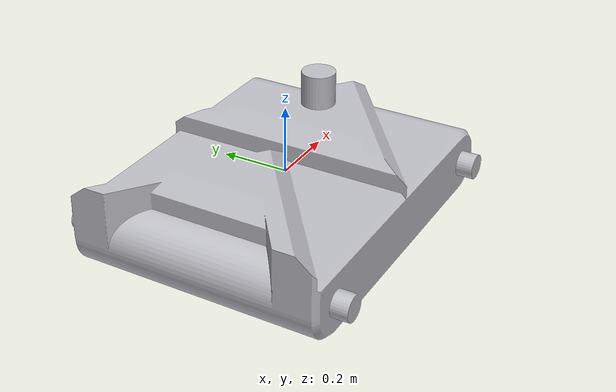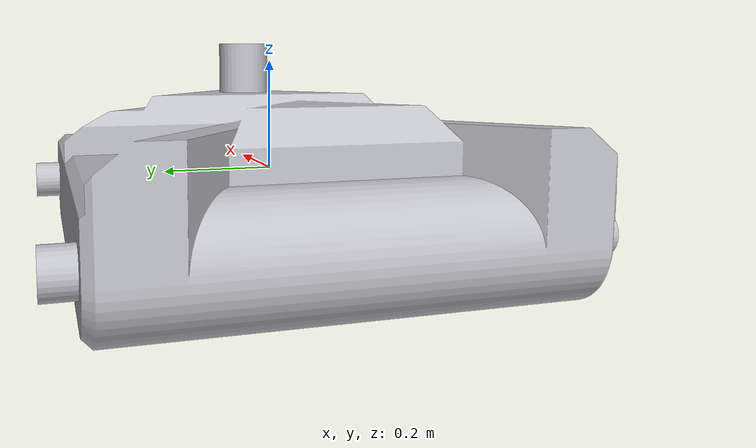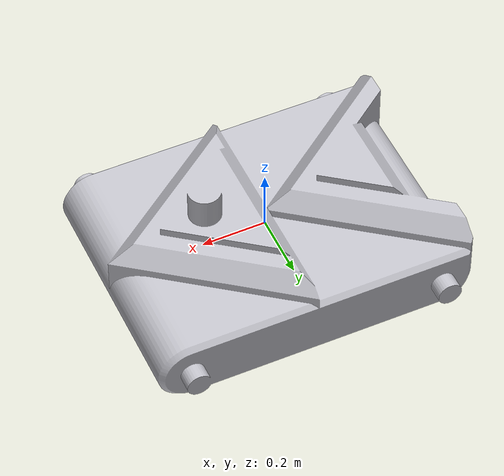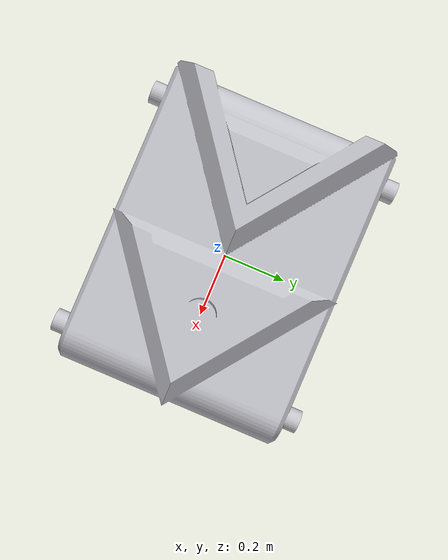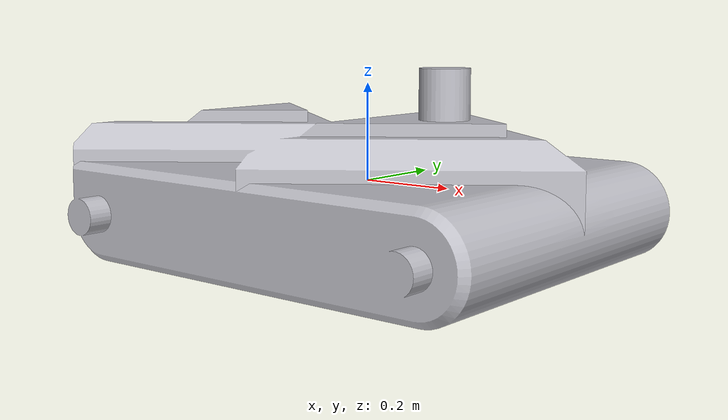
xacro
<?xml version="1.0" ?>
<robot name="amr" xmlns:xacro="http://www.ros.org/wiki/xacro">

<xacro:include filename="$(find amr_description)/urdf/materials.xacro" />
<xacro:include filename="$(find amr_description)/urdf/amr.trans" />
<xacro:include filename="$(find amr_description)/urdf/amr.gazebo" />
<link name="base_link">
  <inertial>
    <origin xyz="0.0 8.902012997990435e-05 0.0005969174994691003" rpy="0 0 0"/>
    <mass value="1.202294246159139"/>
    <inertia ixx="0.001027" iyy="0.000603" izz="0.001535" ixy="0.0" iyz="-1e-06" ixz="0.0"/>
  </inertial>
  <visual>
    <origin xyz="0 0 0" rpy="0 0 0"/>
    <geometry>
      <mesh filename="package://amr_description/meshes/base_link.stl" scale="0.001 0.001 0.001"/>
    </geometry>
    <material name="silver"/>
  </visual>
  <collision>
    <origin xyz="0 0 0" rpy="0 0 0"/>
    <geometry>
      <mesh filename="package://amr_description/meshes/base_link.stl" scale="0.001 0.001 0.001"/>
    </geometry>
  </collision>
</link>

<link name="f_wheel_link_1">
  <inertial>
    <origin xyz="-3.313617118894079e-17 -3.319497454690179e-13 3.469446951953614e-20" rpy="0 0 0"/>
    <mass value="0.20199414508982372"/>
    <inertia ixx="3.7e-05" iyy="0.000378" izz="0.000378" ixy="-0.0" iyz="-0.0" ixz="0.0"/>
  </inertial>
  <visual>
    <origin xyz="-0.0 0.0375 -0.0" rpy="0 0 0"/>
    <geometry>
      <mesh filename="package://amr_description/meshes/f_wheel_link_1.stl" scale="0.001 0.001 0.001"/>
    </geometry>
    <material name="silver"/>
  </visual>
  <collision>
    <origin xyz="-0.0 0.0375 -0.0" rpy="0 0 0"/>
    <geometry>
      <mesh filename="package://amr_description/meshes/f_wheel_link_1.stl" scale="0.001 0.001 0.001"/>
    </geometry>
  </collision>
</link>

<link name="b_wheel_link_1">
  <inertial>
    <origin xyz="2.2090780792627208e-17 3.319566843629218e-13 0.0" rpy="0 0 0"/>
    <mass value="0.20199414508982363"/>
    <inertia ixx="3.7e-05" iyy="0.000378" izz="0.000378" ixy="-0.0" iyz="0.0" ixz="0.0"/>
  </inertial>
  <visual>
    <origin xyz="-0.0 -0.0375 -0.0" rpy="0 0 0"/>
    <geometry>
      <mesh filename="package://amr_description/meshes/b_wheel_link_1.stl" scale="0.001 0.001 0.001"/>
    </geometry>
    <material name="silver"/>
  </visual>
  <collision>
    <origin xyz="-0.0 -0.0375 -0.0" rpy="0 0 0"/>
    <geometry>
      <mesh filename="package://amr_description/meshes/b_wheel_link_1.stl" scale="0.001 0.001 0.001"/>
    </geometry>
  </collision>
</link>

<joint name="f_wheel_joint" type="continuous">
  <origin xyz="0.0 -0.0375 0.0" rpy="0 0 0"/>
  <parent link="base_link"/>
  <child link="f_wheel_link_1"/>
  <axis xyz="1.0 0.0 0.0"/>
</joint>

<joint name="b_wheel_joint" type="continuous">
  <origin xyz="0.0 0.0375 0.0" rpy="0 0 0"/>
  <parent link="base_link"/>
  <child link="b_wheel_link_1"/>
  <axis xyz="1.0 0.0 0.0"/>
</joint>

</robot>

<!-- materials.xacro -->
<robot xmlns:xacro="http://www.ros.org/wiki/xacro">

    <!-- ================= COLORS ================= -->

    <material name="black">
        <color rgba="0.05 0.05 0.05 1"/>
    </material>

    <material name="dark_grey">
        <color rgba="0.2 0.2 0.2 1"/>
    </material>

    <material name="grey">
        <color rgba="0.5 0.5 0.5 1"/>
    </material>

    <material name="orange">
        <color rgba="0.85 0.55 0.1 1"/>
    </material>

    <material name="blue">
        <color rgba="0.1 0.3 0.8 1"/>
    </material>

    <material name="white">
        <color rgba="1 1 1 1"/>
    </material>

</robot>

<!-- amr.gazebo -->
<robot name="amr" xmlns:xacro="http://www.ros.org/wiki/xacro" >

<xacro:property name="body_color" value="Gazebo/Silver" />

<gazebo>
  <plugin name="control" filename="libgazebo_ros_control.so"/>
</gazebo>
<gazebo reference="base_link">
  <material>${body_color}</material>
  <mu1>0.2</mu1>
  <mu2>0.2</mu2>
  <selfCollide>true</selfCollide>
  <gravity>true</gravity>
</gazebo>

<gazebo reference="f_wheel_link_1">
  <material>${body_color}</material>
  <mu1>0.2</mu1>
  <mu2>0.2</mu2>
  <selfCollide>true</selfCollide>
</gazebo>

<gazebo reference="b_wheel_link_1">
  <material>${body_color}</material>
  <mu1>0.2</mu1>
  <mu2>0.2</mu2>
  <selfCollide>true</selfCollide>
</gazebo>

</robot>
